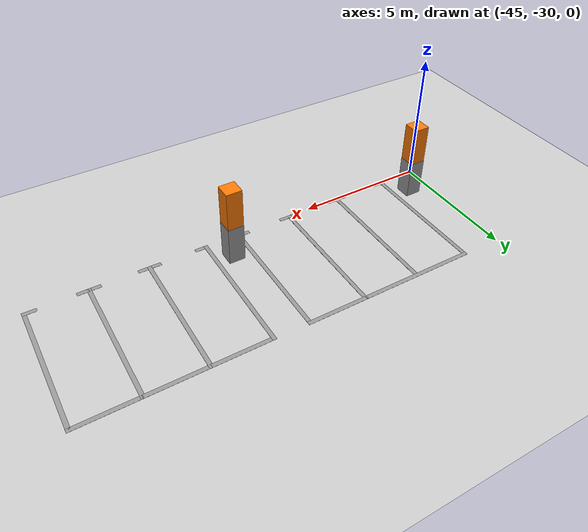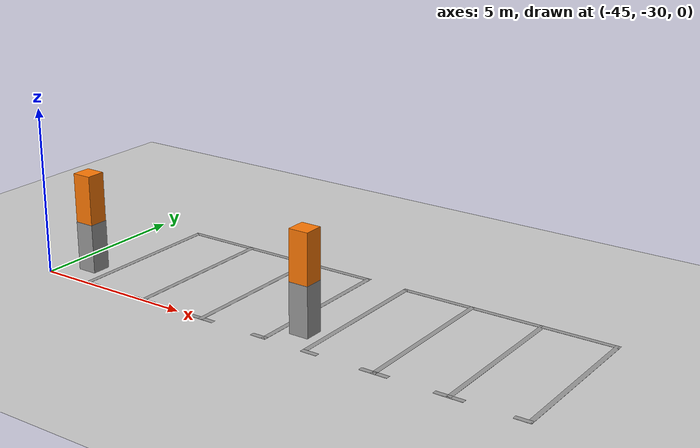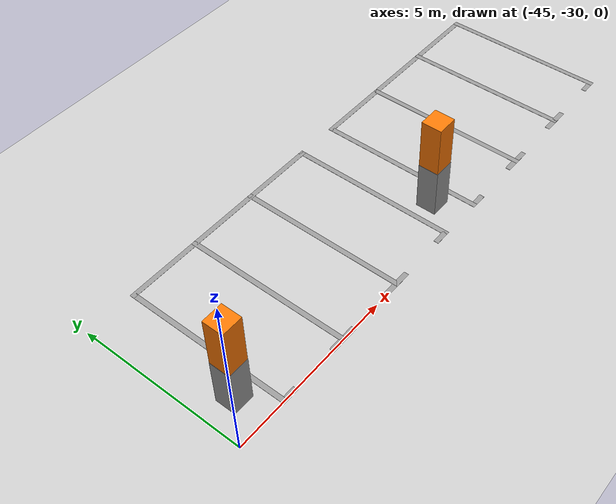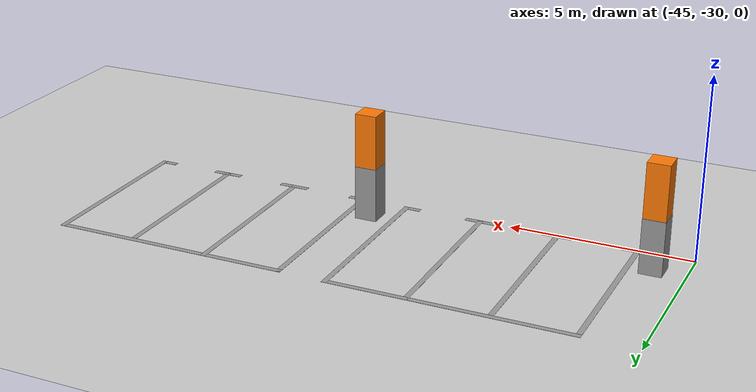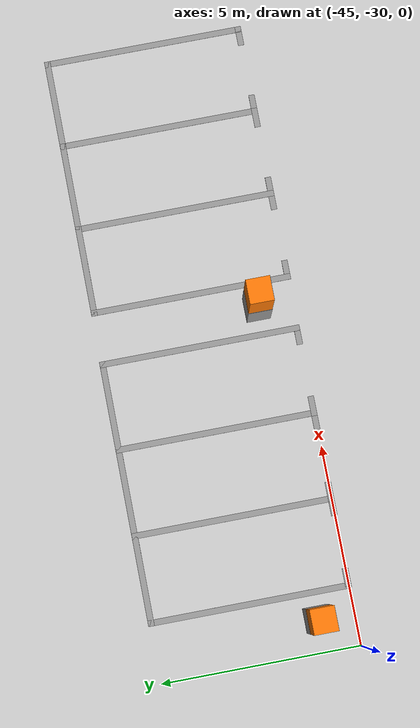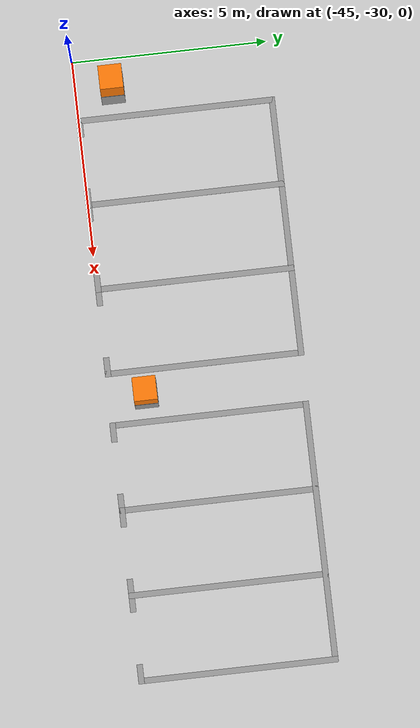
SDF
<sdf version="1.7">
 <world name="default">
  <model name="ground_plane">
   <static>1</static>
   <link name="link">
    <collision name="collision">
     <geometry><plane><normal>0 0 1</normal><size>100 100</size></plane></geometry>
     <surface><friction><ode><mu>100</mu><mu2>50</mu2></ode></friction></surface>
    </collision>
    <visual name="visual">
     <cast_shadows>0</cast_shadows>
     <geometry><plane><normal>0 0 1</normal><size>100 100</size></plane></geometry>
     <material>
      <script><uri>file://media/materials/scripts/gazebo.material</uri><name>Gazebo/Grey</name></script>
     </material>
    </visual>
   </link>
  </model>
  <model name="carport1_3_clone_clone">
   <pose>-32.8182 -25.7786 0 0 -0 0</pose>
   <link name="Wall_105">
    <collision name="Wall_105_Collision">
     <geometry><box><size>0.61 0.6 1.5</size></box></geometry>
     <pose>0 0 0.75 0 -0 0</pose>
    </collision>
    <visual name="Wall_105_Visual">
     <pose>0 0 0.75 0 -0 0</pose>
     <geometry><box><size>0.61 0.6 1.5</size></box></geometry>
     <material>
      <script><uri>file://media/materials/scripts/gazebo.material</uri><name>Gazebo/Grey</name></script>
      <ambient>1 1 1 1</ambient>
     </material>
     <meta><layer>0</layer></meta>
    </visual>
    <pose>-3.47407 -3.2865 0 0 -0 0</pose>
   </link>
   <link name="Wall_116">
    <collision name="Wall_116_Collision">
     <geometry><box><size>5.1 0.15 0.005</size></box></geometry>
     <pose>0 0 0.0025 0 -0 0</pose>
    </collision>
    <visual name="Wall_116_Visual">
     <pose>0 0 0.0025 0 -0 0</pose>
     <geometry><box><size>5.1 0.15 0.005</size></box></geometry>
     <material>
      <script><uri>file://media/materials/scripts/gazebo.material</uri><name>Gazebo/Grey</name></script>
      <ambient>1 1 1 1</ambient>
     </material>
     <meta><layer>0</layer></meta>
    </visual>
    <pose>-2.82307 -1.7385 0 0 -0 1.5708</pose>
   </link>
   <link name="Wall_124">
    <collision name="Wall_124_Collision">
     <geometry><box><size>5.1 0.15 0.005</size></box></geometry>
     <pose>0 0 0.0025 0 -0 0</pose>
    </collision>
    <visual name="Wall_124_Visual">
     <pose>0 0 0.0025 0 -0 0</pose>
     <geometry><box><size>5.1 0.15 0.005</size></box></geometry>
     <material>
      <script><uri>file://media/materials/scripts/gazebo.material</uri><name>Gazebo/Grey</name></script>
      <ambient>1 1 1 1</ambient>
     </material>
     <meta><layer>0</layer></meta>
    </visual>
    <pose>3.70393 -1.7305 0 0 -0 1.5708</pose>
   </link>
   <link name="Wall_146">
    <collision name="Wall_146_Collision">
     <geometry><box><size>6.67711 0.15 0.005</size></box></geometry>
     <pose>0 0 0.0025 0 -0 0</pose>
    </collision>
    <visual name="Wall_146_Visual">
     <pose>0 0 0.0025 0 -0 0</pose>
     <geometry><box><size>6.67711 0.15 0.005</size></box></geometry>
     <material>
      <script><uri>file://media/materials/scripts/gazebo.material</uri><name>Gazebo/Grey</name></script>
      <ambient>1 1 1 1</ambient>
     </material>
     <meta><layer>0</layer></meta>
    </visual>
    <pose>0.440428 0.7405 0 0 -0 0.001226</pose>
   </link>
   <link name="Wall_168">
    <collision name="Wall_168_Collision">
     <geometry><box><size>5.1 0.15 0.005</size></box></geometry>
     <pose>0 0 0.0025 0 -0 0</pose>
    </collision>
    <visual name="Wall_168_Visual">
     <pose>0 0 0.0025 0 -0 0</pose>
     <geometry><box><size>5.1 0.15 0.005</size></box></geometry>
     <material>
      <script><uri>file://media/materials/scripts/gazebo.material</uri><name>Gazebo/Grey</name></script>
      <ambient>1 1 1 1</ambient>
     </material>
     <meta><layer>0</layer></meta>
    </visual>
    <pose>-0.64827 -1.73839 0 0 -0 1.57088</pose>
   </link>
   <link name="Wall_173">
    <collision name="Wall_173_Collision">
     <geometry><box><size>5.1 0.15 0.005</size></box></geometry>
     <pose>0 0 0.0025 0 -0 0</pose>
    </collision>
    <visual name="Wall_173_Visual">
     <pose>0 0 0.0025 0 -0 0</pose>
     <geometry><box><size>5.1 0.15 0.005</size></box></geometry>
     <material>
      <script><uri>file://media/materials/scripts/gazebo.material</uri><name>Gazebo/Grey</name></script>
      <ambient>1 1 1 1</ambient>
     </material>
     <meta><layer>0</layer></meta>
    </visual>
    <pose>1.52673 -1.73839 0 0 -0 1.57088</pose>
   </link>
   <link name="Wall_177">
    <collision name="Wall_177_Collision">
     <geometry><box><size>0.6 0.59 3</size></box></geometry>
     <pose>0 0 1.5 0 -0 0</pose>
    </collision>
    <visual name="Wall_177_Visual">
     <pose>0 0 1.5 0 -0 0</pose>
     <geometry><box><size>0.6 0.59 3</size></box></geometry>
     <material>
      <script><uri>file://media/materials/scripts/gazebo.material</uri><name>Gazebo/Grey</name></script>
      <ambient>0.996078 0.47451 0.0196078 1</ambient>
     </material>
     <meta><layer>0</layer></meta>
    </visual>
    <pose>-3.47407 -3.2865 0 0 -0 0</pose>
   </link>
   <link name="Wall_179">
    <collision name="Wall_179_Collision">
     <geometry><box><size>0.5 0.15 0.005</size></box></geometry>
     <pose>0 0 0.0025 0 -0 0</pose>
    </collision>
    <visual name="Wall_179_Visual">
     <pose>0 0 0.0025 0 -0 0</pose>
     <geometry><box><size>0.5 0.15 0.005</size></box></geometry>
     <material>
      <script><uri>file://media/materials/scripts/gazebo.material</uri><name>Gazebo/Grey</name></script>
      <ambient>1 1 1 1</ambient>
     </material>
     <meta><layer>0</layer></meta>
    </visual>
    <pose>-2.64807 -4.2135 0 0 -0 0</pose>
   </link>
   <link name="Wall_181">
    <collision name="Wall_181_Collision">
     <geometry><box><size>0.5 0.15 0.005</size></box></geometry>
     <pose>0 0 0.0025 0 -0 0</pose>
    </collision>
    <visual name="Wall_181_Visual">
     <pose>0 0 0.0025 0 -0 0</pose>
     <geometry><box><size>0.5 0.15 0.005</size></box></geometry>
     <material>
      <script><uri>file://media/materials/scripts/gazebo.material</uri><name>Gazebo/Grey</name></script>
      <ambient>1 1 1 1</ambient>
     </material>
     <meta><layer>0</layer></meta>
    </visual>
    <pose>-0.823072 -4.2135 0 0 -0 3.14159</pose>
   </link>
   <link name="Wall_183">
    <collision name="Wall_183_Collision">
     <geometry><box><size>0.5 0.15 0.005</size></box></geometry>
     <pose>0 0 0.0025 0 -0 0</pose>
    </collision>
    <visual name="Wall_183_Visual">
     <pose>0 0 0.0025 0 -0 0</pose>
     <geometry><box><size>0.5 0.15 0.005</size></box></geometry>
     <material>
      <script><uri>file://media/materials/scripts/gazebo.material</uri><name>Gazebo/Grey</name></script>
      <ambient>1 1 1 1</ambient>
     </material>
     <meta><layer>0</layer></meta>
    </visual>
    <pose>-0.473072 -4.2135 0 0 -0 0</pose>
   </link>
   <link name="Wall_185">
    <collision name="Wall_185_Collision">
     <geometry><box><size>0.5 0.15 0.005</size></box></geometry>
     <pose>0 0 0.0025 0 -0 0</pose>
    </collision>
    <visual name="Wall_185_Visual">
     <pose>0 0 0.0025 0 -0 0</pose>
     <geometry><box><size>0.5 0.15 0.005</size></box></geometry>
     <material>
      <script><uri>file://media/materials/scripts/gazebo.material</uri><name>Gazebo/Grey</name></script>
      <ambient>1 1 1 1</ambient>
     </material>
     <meta><layer>0</layer></meta>
    </visual>
    <pose>1.35193 -4.2135 0 0 -0 3.14159</pose>
   </link>
   <link name="Wall_187">
    <collision name="Wall_187_Collision">
     <geometry><box><size>0.5 0.15 0.005</size></box></geometry>
     <pose>0 0 0.0025 0 -0 0</pose>
    </collision>
    <visual name="Wall_187_Visual">
     <pose>0 0 0.0025 0 -0 0</pose>
     <geometry><box><size>0.5 0.15 0.005</size></box></geometry>
     <material>
      <script><uri>file://media/materials/scripts/gazebo.material</uri><name>Gazebo/Grey</name></script>
      <ambient>1 1 1 1</ambient>
     </material>
     <meta><layer>0</layer></meta>
    </visual>
    <pose>1.70193 -4.2135 0 0 -0 0</pose>
   </link>
   <link name="Wall_189">
    <collision name="Wall_189_Collision">
     <geometry><box><size>0.5 0.15 0.005</size></box></geometry>
     <pose>0 0 0.0025 0 -0 0</pose>
    </collision>
    <visual name="Wall_189_Visual">
     <pose>0 0 0.0025 0 -0 0</pose>
     <geometry><box><size>0.5 0.15 0.005</size></box></geometry>
     <material>
      <script><uri>file://media/materials/scripts/gazebo.material</uri><name>Gazebo/Grey</name></script>
      <ambient>1 1 1 1</ambient>
     </material>
     <meta><layer>0</layer></meta>
    </visual>
    <pose>3.52893 -4.2055 0 0 -0 3.14159</pose>
   </link>
   <static>1</static>
  </model>
  <model name="carport1_3_clone_clone_clone">
   <pose>-40.6672 -25.7611 0 0 -0 0</pose>
   <link name="Wall_105">
    <collision name="Wall_105_Collision">
     <geometry><box><size>0.61 0.6 1.5</size></box></geometry>
     <pose>0 0 0.75 0 -0 0</pose>
    </collision>
    <visual name="Wall_105_Visual">
     <pose>0 0 0.75 0 -0 0</pose>
     <geometry><box><size>0.61 0.6 1.5</size></box></geometry>
     <material>
      <script><uri>file://media/materials/scripts/gazebo.material</uri><name>Gazebo/Grey</name></script>
      <ambient>1 1 1 1</ambient>
     </material>
     <meta><layer>0</layer></meta>
    </visual>
    <pose>-3.47407 -3.2865 0 0 -0 0</pose>
   </link>
   <link name="Wall_116">
    <collision name="Wall_116_Collision">
     <geometry><box><size>5.1 0.15 0.005</size></box></geometry>
     <pose>0 0 0.0025 0 -0 0</pose>
    </collision>
    <visual name="Wall_116_Visual">
     <pose>0 0 0.0025 0 -0 0</pose>
     <geometry><box><size>5.1 0.15 0.005</size></box></geometry>
     <material>
      <script><uri>file://media/materials/scripts/gazebo.material</uri><name>Gazebo/Grey</name></script>
      <ambient>1 1 1 1</ambient>
     </material>
     <meta><layer>0</layer></meta>
    </visual>
    <pose>-2.82307 -1.7385 0 0 -0 1.5708</pose>
   </link>
   <link name="Wall_124">
    <collision name="Wall_124_Collision">
     <geometry><box><size>5.1 0.15 0.005</size></box></geometry>
     <pose>0 0 0.0025 0 -0 0</pose>
    </collision>
    <visual name="Wall_124_Visual">
     <pose>0 0 0.0025 0 -0 0</pose>
     <geometry><box><size>5.1 0.15 0.005</size></box></geometry>
     <material>
      <script><uri>file://media/materials/scripts/gazebo.material</uri><name>Gazebo/Grey</name></script>
      <ambient>1 1 1 1</ambient>
     </material>
     <meta><layer>0</layer></meta>
    </visual>
    <pose>3.70393 -1.7305 0 0 -0 1.5708</pose>
   </link>
   <link name="Wall_146">
    <collision name="Wall_146_Collision">
     <geometry><box><size>6.67711 0.15 0.005</size></box></geometry>
     <pose>0 0 0.0025 0 -0 0</pose>
    </collision>
    <visual name="Wall_146_Visual">
     <pose>0 0 0.0025 0 -0 0</pose>
     <geometry><box><size>6.67711 0.15 0.005</size></box></geometry>
     <material>
      <script><uri>file://media/materials/scripts/gazebo.material</uri><name>Gazebo/Grey</name></script>
      <ambient>1 1 1 1</ambient>
     </material>
     <meta><layer>0</layer></meta>
    </visual>
    <pose>0.440428 0.7405 0 0 -0 0.001226</pose>
   </link>
   <link name="Wall_168">
    <collision name="Wall_168_Collision">
     <geometry><box><size>5.1 0.15 0.005</size></box></geometry>
     <pose>0 0 0.0025 0 -0 0</pose>
    </collision>
    <visual name="Wall_168_Visual">
     <pose>0 0 0.0025 0 -0 0</pose>
     <geometry><box><size>5.1 0.15 0.005</size></box></geometry>
     <material>
      <script><uri>file://media/materials/scripts/gazebo.material</uri><name>Gazebo/Grey</name></script>
      <ambient>1 1 1 1</ambient>
     </material>
     <meta><layer>0</layer></meta>
    </visual>
    <pose>-0.64827 -1.73839 0 0 -0 1.57088</pose>
   </link>
   <link name="Wall_173">
    <collision name="Wall_173_Collision">
     <geometry><box><size>5.1 0.15 0.005</size></box></geometry>
     <pose>0 0 0.0025 0 -0 0</pose>
    </collision>
    <visual name="Wall_173_Visual">
     <pose>0 0 0.0025 0 -0 0</pose>
     <geometry><box><size>5.1 0.15 0.005</size></box></geometry>
     <material>
      <script><uri>file://media/materials/scripts/gazebo.material</uri><name>Gazebo/Grey</name></script>
      <ambient>1 1 1 1</ambient>
     </material>
     <meta><layer>0</layer></meta>
    </visual>
    <pose>1.52673 -1.73839 0 0 -0 1.57088</pose>
   </link>
   <link name="Wall_177">
    <collision name="Wall_177_Collision">
     <geometry><box><size>0.6 0.59 3</size></box></geometry>
     <pose>0 0 1.5 0 -0 0</pose>
    </collision>
    <visual name="Wall_177_Visual">
     <pose>0 0 1.5 0 -0 0</pose>
     <geometry><box><size>0.6 0.59 3</size></box></geometry>
     <material>
      <script><uri>file://media/materials/scripts/gazebo.material</uri><name>Gazebo/Grey</name></script>
      <ambient>0.996078 0.47451 0.0196078 1</ambient>
     </material>
     <meta><layer>0</layer></meta>
    </visual>
    <pose>-3.47407 -3.2865 0 0 -0 0</pose>
   </link>
   <link name="Wall_179">
    <collision name="Wall_179_Collision">
     <geometry><box><size>0.5 0.15 0.005</size></box></geometry>
     <pose>0 0 0.0025 0 -0 0</pose>
    </collision>
    <visual name="Wall_179_Visual">
     <pose>0 0 0.0025 0 -0 0</pose>
     <geometry><box><size>0.5 0.15 0.005</size></box></geometry>
     <material>
      <script><uri>file://media/materials/scripts/gazebo.material</uri><name>Gazebo/Grey</name></script>
      <ambient>1 1 1 1</ambient>
     </material>
     <meta><layer>0</layer></meta>
    </visual>
    <pose>-2.64807 -4.2135 0 0 -0 0</pose>
   </link>
   <link name="Wall_181">
    <collision name="Wall_181_Collision">
     <geometry><box><size>0.5 0.15 0.005</size></box></geometry>
     <pose>0 0 0.0025 0 -0 0</pose>
    </collision>
    <visual name="Wall_181_Visual">
     <pose>0 0 0.0025 0 -0 0</pose>
     <geometry><box><size>0.5 0.15 0.005</size></box></geometry>
     <material>
      <script><uri>file://media/materials/scripts/gazebo.material</uri><name>Gazebo/Grey</name></script>
      <ambient>1 1 1 1</ambient>
     </material>
     <meta><layer>0</layer></meta>
    </visual>
    <pose>-0.823072 -4.2135 0 0 -0 3.14159</pose>
   </link>
   <link name="Wall_183">
    <collision name="Wall_183_Collision">
     <geometry><box><size>0.5 0.15 0.005</size></box></geometry>
     <pose>0 0 0.0025 0 -0 0</pose>
    </collision>
    <visual name="Wall_183_Visual">
     <pose>0 0 0.0025 0 -0 0</pose>
     <geometry><box><size>0.5 0.15 0.005</size></box></geometry>
     <material>
      <script><uri>file://media/materials/scripts/gazebo.material</uri><name>Gazebo/Grey</name></script>
      <ambient>1 1 1 1</ambient>
     </material>
     <meta><layer>0</layer></meta>
    </visual>
    <pose>-0.473072 -4.2135 0 0 -0 0</pose>
   </link>
   <link name="Wall_185">
    <collision name="Wall_185_Collision">
     <geometry><box><size>0.5 0.15 0.005</size></box></geometry>
     <pose>0 0 0.0025 0 -0 0</pose>
    </collision>
    <visual name="Wall_185_Visual">
     <pose>0 0 0.0025 0 -0 0</pose>
     <geometry><box><size>0.5 0.15 0.005</size></box></geometry>
     <material>
      <script><uri>file://media/materials/scripts/gazebo.material</uri><name>Gazebo/Grey</name></script>
      <ambient>1 1 1 1</ambient>
     </material>
     <meta><layer>0</layer></meta>
    </visual>
    <pose>1.35193 -4.2135 0 0 -0 3.14159</pose>
   </link>
   <link name="Wall_187">
    <collision name="Wall_187_Collision">
     <geometry><box><size>0.5 0.15 0.005</size></box></geometry>
     <pose>0 0 0.0025 0 -0 0</pose>
    </collision>
    <visual name="Wall_187_Visual">
     <pose>0 0 0.0025 0 -0 0</pose>
     <geometry><box><size>0.5 0.15 0.005</size></box></geometry>
     <material>
      <script><uri>file://media/materials/scripts/gazebo.material</uri><name>Gazebo/Grey</name></script>
      <ambient>1 1 1 1</ambient>
     </material>
     <meta><layer>0</layer></meta>
    </visual>
    <pose>1.70193 -4.2135 0 0 -0 0</pose>
   </link>
   <link name="Wall_189">
    <collision name="Wall_189_Collision">
     <geometry><box><size>0.5 0.15 0.005</size></box></geometry>
     <pose>0 0 0.0025 0 -0 0</pose>
    </collision>
    <visual name="Wall_189_Visual">
     <pose>0 0 0.0025 0 -0 0</pose>
     <geometry><box><size>0.5 0.15 0.005</size></box></geometry>
     <material>
      <script><uri>file://media/materials/scripts/gazebo.material</uri><name>Gazebo/Grey</name></script>
      <ambient>1 1 1 1</ambient>
     </material>
     <meta><layer>0</layer></meta>
    </visual>
    <pose>3.52893 -4.2055 0 0 -0 3.14159</pose>
   </link>
   <static>1</static>
  </model>
 </world>
</sdf>
